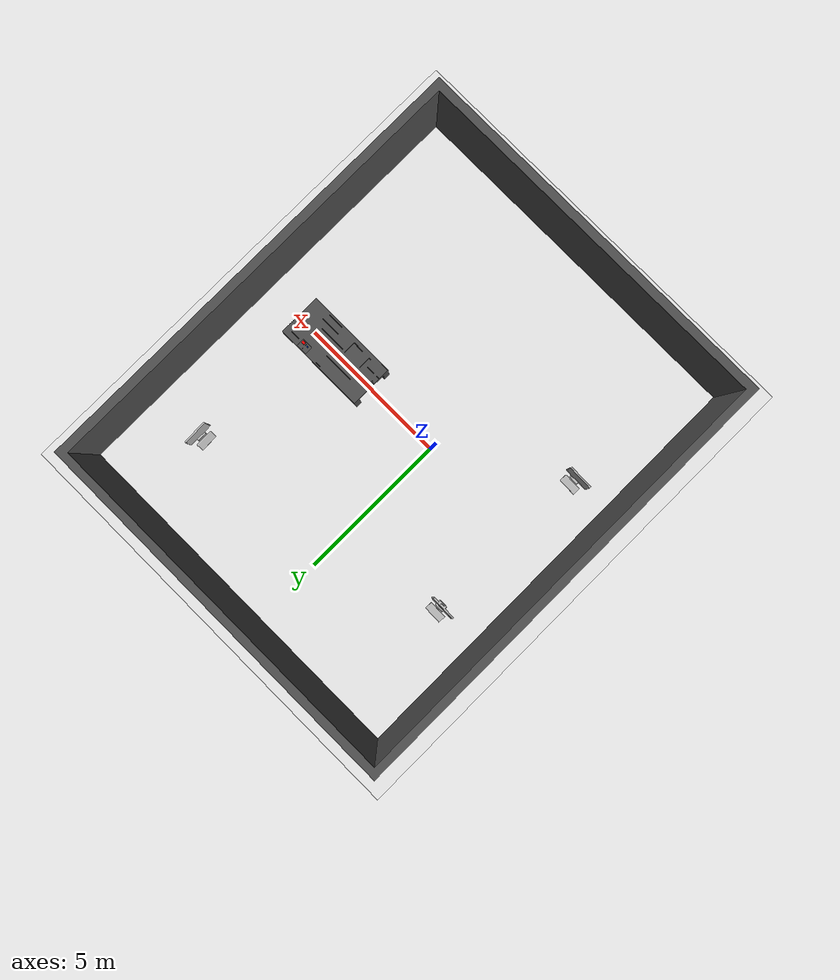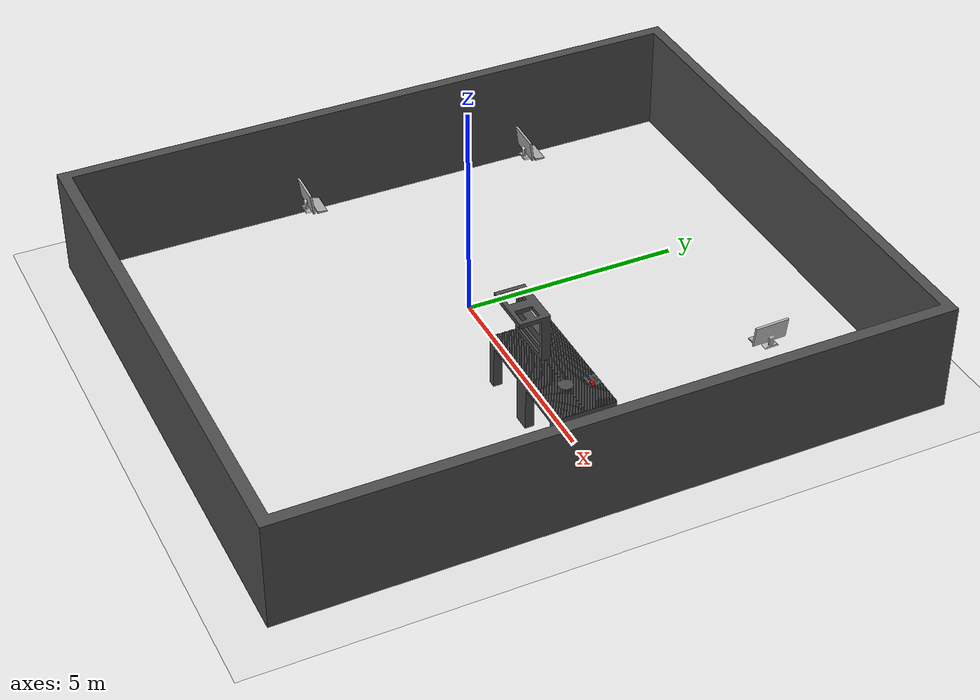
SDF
<sdf version="1.8">
 <world name="workstation_world">
  <physics name="1ms" type="bullet-featherstone">
   <max_step_size>0.001</max_step_size>
   <real_time_factor>1.0</real_time_factor>
  </physics>
  <scene><ambient>0.4 0.4 0.4 1</ambient><background>0.8 0.8 0.8 1</background><shadows>true</shadows></scene>
  <light name="sun" type="directional">
   <pose>0 0 10 0 0 0</pose>
   <diffuse>0.8 0.8 0.8 1</diffuse>
   <specular>0.2 0.2 0.2 1</specular>
   <attenuation>
    <range>1000</range>
    <constant>0.9</constant>
    <linear>0.01</linear>
    <quadratic>0.001</quadratic>
   </attenuation>
   <direction>-0.5 0.1 -0.9</direction>
  </light>
  <model name="ground_plane">
   <static>true</static>
   <link name="link">
    <collision name="collision">
     <geometry><plane><normal>0 0 1</normal><size>20 20</size></plane></geometry>
    </collision>
    <visual name="visual">
     <geometry><plane><normal>0 0 1</normal><size>20 20</size></plane></geometry>
     <material><ambient>0.9 0.9 0.9 1</ambient><diffuse>0.9 0.9 0.9 1</diffuse></material>
    </visual>
   </link>
  </model>
  <include><uri>model://lab_table</uri><pose>4 0 0 0 0 0</pose></include>
  <include><uri>model://lab_wall</uri><pose>1 0 0 0 0 0</pose></include>
  <include>
   <name>computer_1</name>
   <uri>https://fuel.gazebosim.org/1.0/OpenRobotics/models/MonitorAndKeyboard</uri>
   <pose>5.0637 4.5313 1.0245 0.0023 0.0094 0.0285</pose>
  </include>
  <include>
   <name>computer_2</name>
   <uri>https://fuel.gazebosim.org/1.0/OpenRobotics/models/MonitorAndKeyboard</uri>
   <pose>-3.4187 3.0223 1.1015 -0.0095 0.0017 -1.6027</pose>
  </include>
  <include>
   <name>computer_3</name>
   <uri>https://fuel.gazebosim.org/1.0/OpenRobotics/models/MonitorAndKeyboard</uri>
   <pose>-3.5900 -2.3444 1.0924 -0.0095 0.0017 -1.6027</pose>
  </include>
  <include>
   <name>input_station</name>
   <uri>model://Input_Station</uri>
   <pose>4.8953 0.6823 1.2104 0 0 -3.1414</pose>
  </include>
  <include>
   <name>Assembly_Station</name>
   <uri>model://Assembly_Station</uri>
   <pose>6.1403 -0.5869 1.2219 0 0 1.5616</pose>
  </include>
  <include><name>battery</name><uri>model://battery</uri><pose>4.8670 0.4491 1.2101 0 0 1.5616</pose></include>
  <include><name>motor</name><uri>model://motor</uri><pose>4.6134 0.4959 1.2365 1.5646 0 1.5616</pose></include>
 </world>
</sdf>

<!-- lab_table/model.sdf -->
<sdf version="1.8">
  <model name="lab_table">
    <static>true</static>
    <pose>0 0 0 0 0 0</pose>

    <link name="table_link">

      <!-- Visual mesh -->
      <visual name="table_visual">
        <geometry>
          <mesh>
            <uri>model://lab_table/meshes/Table.stl</uri>
            <scale>0.001 0.001 0.001</scale>
          </mesh>
        </geometry>
        <material>
          <ambient>0.2 0.2 0.2 1</ambient>
          <diffuse>0.3 0.3 0.3 1</diffuse>
          <specular>0.05 0.05 0.05 1</specular>
        </material>
      </visual>

      <!-- Simple collision -->
      <collision name="table_collision">
        <pose>0 0 0.4 0 0 0</pose>
        <geometry>
          <box>
            <size>1.2 0.8 0.8</size>
          </box>
        </geometry>
      </collision>

    </link>
  </model>
</sdf>

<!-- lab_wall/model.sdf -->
<sdf version="1.8">
  <model name="lab_wall">
    <static>true</static>
    <pose>0 0 0 0 0 0</pose>

    <link name="wall_link">

      <!-- Visual mesh -->
      <visual name="wall_visual">
        <geometry>
          <mesh>
            <uri>model://lab_wall/meshes/wall.stl</uri>
            <scale>0.0025 0.0025 0.001</scale>
          </mesh>
        </geometry>
         <material>
          <ambient>0.2 0.2 0.2 1</ambient>
          <diffuse>0.3 0.3 0.3 1</diffuse>
          <specular>0.05 0.05 0.05 1</specular>
        </material>
      </visual>

      <!-- Simple collision -->
      <collision name="wall_collision">
        <pose>0 0 0.4 0 0 0</pose>
        <geometry>
          <box>
            <size>1.2 0.8 0.8</size>
          </box>
        </geometry>
      </collision>

    </link>
  </model>
</sdf>

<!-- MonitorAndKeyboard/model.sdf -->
<sdf version="1.6">
  <model name='MonitorAndKeyboard'>
    <link name="body">
      <pose>0 0 0 0 0 0</pose>

      <visual name="visual_monitor">
        <geometry>
          <mesh>
            <uri>model://MonitorAndKeyboard/meshes/monitor.obj</uri>
            <scale>0.20 0.20 0.20</scale>
          </mesh>
        </geometry>
        <pose>0 0 0 0 0 0</pose>
      </visual>

      <collision name="collision_monitor">
        <geometry>
          <mesh>
            <uri>model://MonitorAndKeyboard/meshes/monitor.obj</uri>
            <scale>0.20 0.20 0.20</scale>
          </mesh>
        </geometry>
        <pose>0 0 0 0 0 0</pose>
      </collision>

      <visual name="visual_keyboard">
        <geometry>
          <mesh>
            <uri>model://MonitorAndKeyboard/meshes/keyboard.obj</uri>
            <scale>0.20 0.20 0.20</scale>
          </mesh>
        </geometry>
        <pose>-0.27 0 0 0 0 0</pose>
      </visual>

      <collision name="collision_keyboard">
        <geometry>
          <mesh>
            <uri>model://MonitorAndKeyboard/meshes/keyboard.obj</uri>
            <scale>0.20 0.20 0.20</scale>
          </mesh>
        </geometry>
        <pose>-0.27 0 0 0 0 0</pose>
      </collision>

    </link>
  </model>
</sdf>

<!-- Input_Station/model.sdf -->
<sdf version="1.8">
  <model name="Input_Station">
    <static>true</static>
    <pose>0 0 0 0 0 0</pose>

    <link name="input_station">

        <!-- visual mesh-->
        <visual name="station_visual">
          <geometry>
            <mesh>
              <uri>model://Input_Station/meshes/Input_Station.stl</uri>
              <scale>0.001 0.001 0.001</scale>
            </mesh>
          </geometry>
          <material>
              <ambient>0.2 0.2 0.2 1</ambient>
              <diffuse>0.3 0.3 0.3 1</diffuse>
              <specular>0.05 0.05 0.05 1</specular>
          </material>
        </visual>

        <!--Simple collision -->
        <collision name="station_collision">
          <pose>0 0 0 0 0 0</pose>
          <geometry>
              <box>
                <size>0.3 0.3 0.03</size>
              </box>
          </geometry>
        </collision>
    </link>
  </model>
</sdf>

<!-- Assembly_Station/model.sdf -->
<sdf version="1.8">
  <model name="assembly_station">
    <static>true</static>
    <pose>0 0 0 0 0 0</pose>

    <link name="storage_station">

    <!--  visual msh -->
        <visual name="storage_visual">
          <geometry>
              <mesh>
                <uri>model://Assembly_Station/meshes/AssemblyStation.stl</uri>
                <scale>0.001 0.001 0.001</scale>
              </mesh>
          </geometry>
          <material>
              <ambient>0.2 0.2 0.2 1</ambient>
              <diffuse>0.3 0.3 0.3 1</diffuse>
              <specular>0.05 0.05 0.05 1</specular>
          </material>
        </visual>

        <!--simple collision-->
        <collision name="storage_collsion">
          <pose>0 0 0.1 0 0 0</pose>
          <geometry>
              <box>
                <size>0.5 0.2 0.2</size>
              </box>
            </geometry>
        </collision>
      </link>
  </model>
</sdf>

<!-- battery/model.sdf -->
<sdf version="1.8">
  <model name="battery">
    <static>true</static>
    <pose>0 0 0 0 0 0</pose>

    <link name="battery">

      <!-- VISUAL -->
      <visual name="battery_visual">
        <geometry>
          <mesh>
            <uri>model://battery/meshes/Bosch_Battery.stl</uri>
            <scale>0.001 0.001 0.001</scale>
          </mesh>
        </geometry>

        <material>
          <ambient>1 0 0 1</ambient>
          <diffuse>1 0 0 1</diffuse>
          <specular>0.3 0.3 0.3 1</specular>
          <emissive>0.1 0 0 1</emissive>
        </material>
      </visual>

      <!-- COLLISION -->
      <collision name="battery_collision">
        <pose>0 0 0.025 0 0 0</pose> <!-- half height -->
        <geometry>
          <box>
            <size>0.105 0.06 0.05</size>
          </box>
        </geometry>
      </collision>

    </link>
  </model>
</sdf>

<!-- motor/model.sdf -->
<sdf version="1.8">
  <model name="motor">
    <static>true</static>
    <pose>0 0 0 0 0 0</pose>

    <link name="motor">

      <!-- VISUAL -->
      <visual name="motor_visual">
        <geometry>
          <mesh>
            <uri>model://motor/meshes/Motor_1.stl</uri>
            <scale>0.001 0.001 0.001</scale>
          </mesh>
        </geometry>

        <material>
          <ambient>0.0 0.05 0.2 1</ambient>
          <diffuse>0.0 0.2 0.8 1</diffuse>
          <specular>0.8 0.8 0.8 1</specular>
          <emissive>0.0 0.0 0.05 1</emissive>
        </material>
      </visual>

      <!-- COLLISION -->
      <collision name="motor_collision">
        <pose>0 0 0.04 0 0 0</pose> <!-- half length -->
        <geometry>
          <cylinder>
            <radius>0.02</radius>
            <length>0.08</length>
          </cylinder>
        </geometry>
      </collision>

    </link>
  </model>
</sdf>
